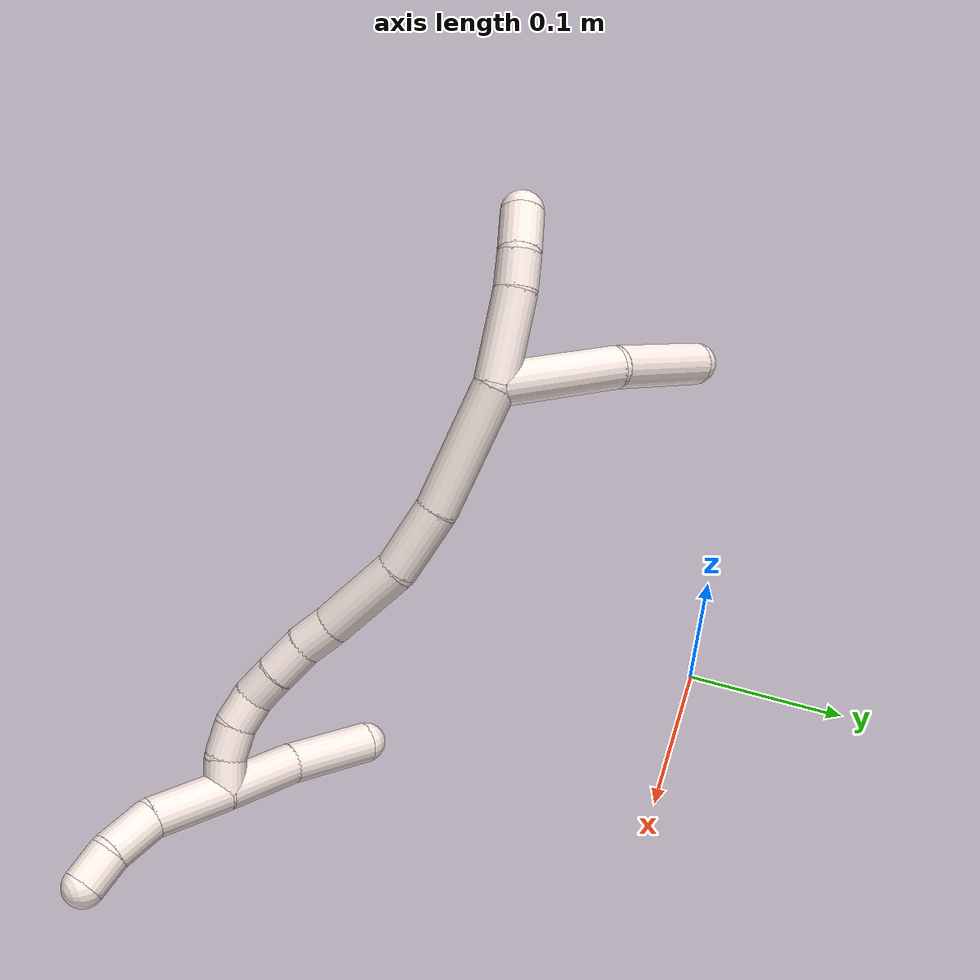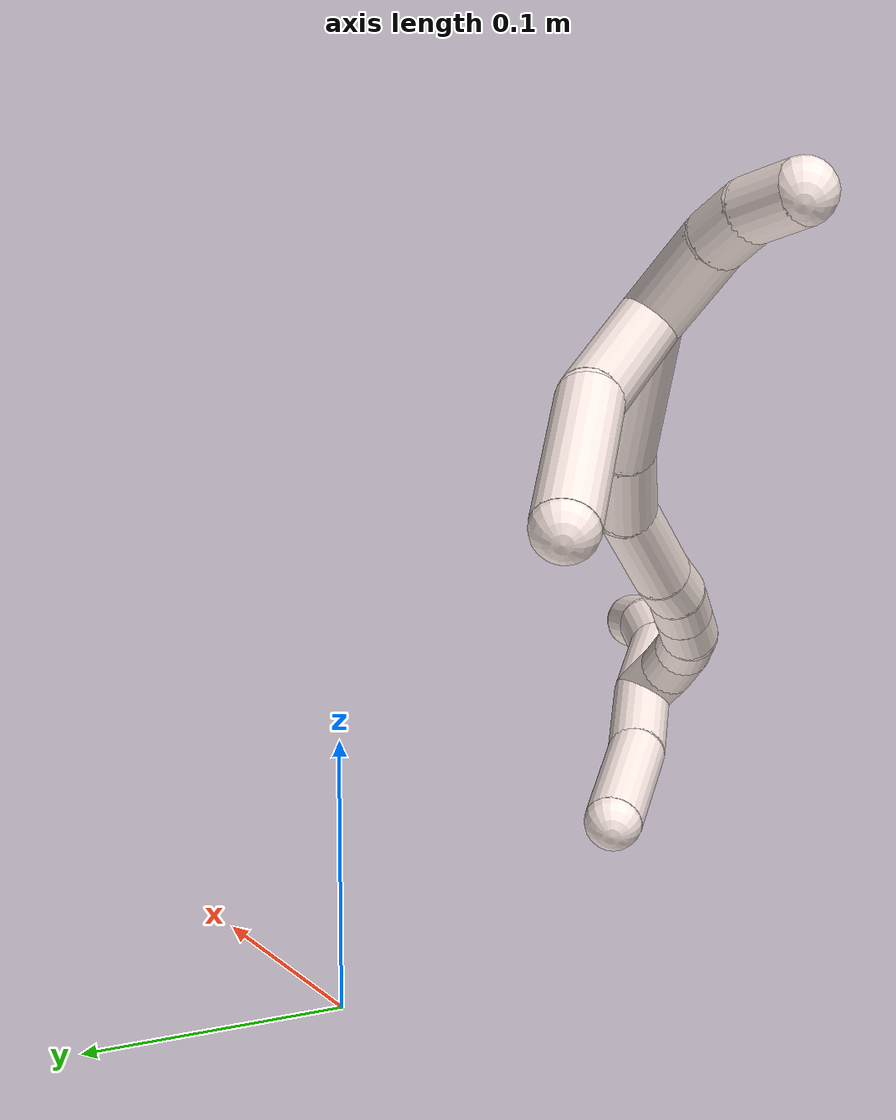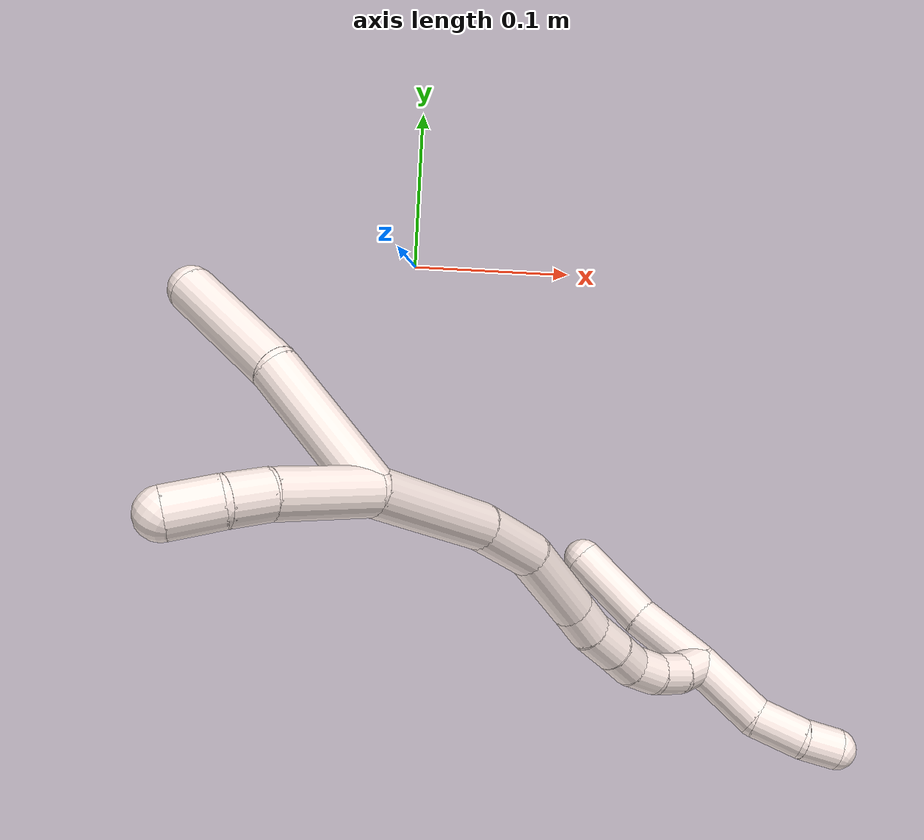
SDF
<sdf version="1.7">
 <world name="default">
  <model name="11">
   <static>0</static>
   <link name="11">
    <collision name="collision-cylinder-e_1_2_8">
     <pose>0.003264 0.008824 -0.03828 -2.91504 0.082893 -0.699125</pose>
     <geometry><cylinder><radius>0.0125</radius><length>0.078838</length></cylinder></geometry>
     <surface>
      <friction><ode><mu>1.16</mu><mu2>1.16</mu2><slip1>0</slip1><slip2>0</slip2></ode></friction>
      <contact><ode><kp>1e+06</kp><kd>1</kd><max_vel>0</max_vel><min_depth>0.001</min_depth></ode></contact>
     </surface>
    </collision>
    <visual name="visual-cylinder-e_1_2_8">
     <pose>0.003264 0.008824 -0.03828 -2.91504 0.082893 -0.699125</pose>
     <geometry><cylinder><radius>0.0125</radius><length>0.078838</length></cylinder></geometry>
     <material><ambient>1 0.933333 0.909804 1</ambient></material>
    </visual>
    <collision name="collision-cylinder-e_2_8_6">
     <pose>0.013125 0.016345 -0.111499 3.10433 0.186504 2.74829</pose>
     <geometry><cylinder><radius>0.0125</radius><length>0.071162</length></cylinder></geometry>
     <surface>
      <friction><ode><mu>1.16</mu><mu2>1.16</mu2><slip1>0</slip1><slip2>0</slip2></ode></friction>
      <contact><ode><kp>1e+06</kp><kd>1</kd><max_vel>0</max_vel><min_depth>0.001</min_depth></ode></contact>
     </surface>
    </collision>
    <visual name="visual-cylinder-e_2_8_6">
     <pose>0.013125 0.016345 -0.111499 3.10433 0.186504 2.74829</pose>
     <geometry><cylinder><radius>0.0125</radius><length>0.071162</length></cylinder></geometry>
     <material><ambient>1 0.933333 0.909804 1</ambient></material>
    </visual>
    <collision name="collision-cylinder-e_1_2_9">
     <pose>-0.023856 0.000978 -0.011448 -3.05637 -1.12196 3.00608</pose>
     <geometry><cylinder><radius>0.0125</radius><length>0.052957</length></cylinder></geometry>
     <surface>
      <friction><ode><mu>1.16</mu><mu2>1.16</mu2><slip1>0</slip1><slip2>0</slip2></ode></friction>
      <contact><ode><kp>1e+06</kp><kd>1</kd><max_vel>0</max_vel><min_depth>0.001</min_depth></ode></contact>
     </surface>
    </collision>
    <visual name="visual-cylinder-e_1_2_9">
     <pose>-0.023856 0.000978 -0.011448 -3.05637 -1.12196 3.00608</pose>
     <geometry><cylinder><radius>0.0125</radius><length>0.052957</length></cylinder></geometry>
     <material><ambient>1 0.933333 0.909804 1</ambient></material>
    </visual>
    <collision name="collision-cylinder-e_2_9_10">
     <pose>-0.057104 0.000844 -0.027215 2.8897 -1.12742 -2.74623</pose>
     <geometry><cylinder><radius>0.0125</radius><length>0.020795</length></cylinder></geometry>
     <surface>
      <friction><ode><mu>1.16</mu><mu2>1.16</mu2><slip1>0</slip1><slip2>0</slip2></ode></friction>
      <contact><ode><kp>1e+06</kp><kd>1</kd><max_vel>0</max_vel><min_depth>0.001</min_depth></ode></contact>
     </surface>
    </collision>
    <visual name="visual-cylinder-e_2_9_10">
     <pose>-0.057104 0.000844 -0.027215 2.8897 -1.12742 -2.74623</pose>
     <geometry><cylinder><radius>0.0125</radius><length>0.020795</length></cylinder></geometry>
     <material><ambient>1 0.933333 0.909804 1</ambient></material>
    </visual>
    <collision name="collision-cylinder-e_3_10_5">
     <pose>-0.07678 -0.004457 -0.03853 2.60198 -0.900445 -2.10218</pose>
     <geometry><cylinder><radius>0.0125</radius><length>0.026248</length></cylinder></geometry>
     <surface>
      <friction><ode><mu>1.16</mu><mu2>1.16</mu2><slip1>0</slip1><slip2>0</slip2></ode></friction>
      <contact><ode><kp>1e+06</kp><kd>1</kd><max_vel>0</max_vel><min_depth>0.001</min_depth></ode></contact>
     </surface>
    </collision>
    <visual name="visual-cylinder-e_3_10_5">
     <pose>-0.07678 -0.004457 -0.03853 2.60198 -0.900445 -2.10218</pose>
     <geometry><cylinder><radius>0.0125</radius><length>0.026248</length></cylinder></geometry>
     <material><ambient>1 0.933333 0.909804 1</ambient></material>
    </visual>
    <collision name="collision-cylinder-e_1_2_11">
     <pose>0.032376 -0.014061 0.016204 0.714716 0.985579 0.395756</pose>
     <geometry><cylinder><radius>0.0125</radius><length>0.077679</length></cylinder></geometry>
     <surface>
      <friction><ode><mu>1.16</mu><mu2>1.16</mu2><slip1>0</slip1><slip2>0</slip2></ode></friction>
      <contact><ode><kp>1e+06</kp><kd>1</kd><max_vel>0</max_vel><min_depth>0.001</min_depth></ode></contact>
     </surface>
    </collision>
    <visual name="visual-cylinder-e_1_2_11">
     <pose>0.032376 -0.014061 0.016204 0.714716 0.985579 0.395756</pose>
     <geometry><cylinder><radius>0.0125</radius><length>0.077679</length></cylinder></geometry>
     <material><ambient>1 0.933333 0.909804 1</ambient></material>
    </visual>
    <collision name="collision-cylinder-e_2_11_12">
     <pose>0.080567 -0.038022 0.042552 0.773224 0.840043 0.359692</pose>
     <geometry><cylinder><radius>0.0125</radius><length>0.042475</length></cylinder></geometry>
     <surface>
      <friction><ode><mu>1.16</mu><mu2>1.16</mu2><slip1>0</slip1><slip2>0</slip2></ode></friction>
      <contact><ode><kp>1e+06</kp><kd>1</kd><max_vel>0</max_vel><min_depth>0.001</min_depth></ode></contact>
     </surface>
    </collision>
    <visual name="visual-cylinder-e_2_11_12">
     <pose>0.080567 -0.038022 0.042552 0.773224 0.840043 0.359692</pose>
     <geometry><cylinder><radius>0.0125</radius><length>0.042475</length></cylinder></geometry>
     <material><ambient>1 0.933333 0.909804 1</ambient></material>
    </visual>
    <collision name="collision-cylinder-e_3_12_13">
     <pose>0.111175 -0.065125 0.066457 0.896091 0.59136 0.290753</pose>
     <geometry><cylinder><radius>0.0125</radius><length>0.05307</length></cylinder></geometry>
     <surface>
      <friction><ode><mu>1.16</mu><mu2>1.16</mu2><slip1>0</slip1><slip2>0</slip2></ode></friction>
      <contact><ode><kp>1e+06</kp><kd>1</kd><max_vel>0</max_vel><min_depth>0.001</min_depth></ode></contact>
     </surface>
    </collision>
    <visual name="visual-cylinder-e_3_12_13">
     <pose>0.111175 -0.065125 0.066457 0.896091 0.59136 0.290753</pose>
     <geometry><cylinder><radius>0.0125</radius><length>0.05307</length></cylinder></geometry>
     <material><ambient>1 0.933333 0.909804 1</ambient></material>
    </visual>
    <collision name="collision-cylinder-e_4_13_14">
     <pose>0.131373 -0.089261 0.086717 0.81774 0.517053 0.228166</pose>
     <geometry><cylinder><radius>0.0125</radius><length>0.021866</length></cylinder></geometry>
     <surface>
      <friction><ode><mu>1.16</mu><mu2>1.16</mu2><slip1>0</slip1><slip2>0</slip2></ode></friction>
      <contact><ode><kp>1e+06</kp><kd>1</kd><max_vel>0</max_vel><min_depth>0.001</min_depth></ode></contact>
     </surface>
    </collision>
    <visual name="visual-cylinder-e_4_13_14">
     <pose>0.131373 -0.089261 0.086717 0.81774 0.517053 0.228166</pose>
     <geometry><cylinder><radius>0.0125</radius><length>0.021866</length></cylinder></geometry>
     <material><ambient>1 0.933333 0.909804 1</ambient></material>
    </visual>
    <collision name="collision-cylinder-e_5_14_15">
     <pose>0.14395 -0.102341 0.100632 0.692044 0.640083 0.237855</pose>
     <geometry><cylinder><radius>0.0125</radius><length>0.024019</length></cylinder></geometry>
     <surface>
      <friction><ode><mu>1.16</mu><mu2>1.16</mu2><slip1>0</slip1><slip2>0</slip2></ode></friction>
      <contact><ode><kp>1e+06</kp><kd>1</kd><max_vel>0</max_vel><min_depth>0.001</min_depth></ode></contact>
     </surface>
    </collision>
    <visual name="visual-cylinder-e_5_14_15">
     <pose>0.14395 -0.102341 0.100632 0.692044 0.640083 0.237855</pose>
     <geometry><cylinder><radius>0.0125</radius><length>0.024019</length></cylinder></geometry>
     <material><ambient>1 0.933333 0.909804 1</ambient></material>
    </visual>
    <collision name="collision-cylinder-e_6_15_16">
     <pose>0.157501 -0.11417 0.113693 0.788798 0.672533 0.288936</pose>
     <geometry><cylinder><radius>0.0125</radius><length>0.02048</length></cylinder></geometry>
     <surface>
      <friction><ode><mu>1.16</mu><mu2>1.16</mu2><slip1>0</slip1><slip2>0</slip2></ode></friction>
      <contact><ode><kp>1e+06</kp><kd>1</kd><max_vel>0</max_vel><min_depth>0.001</min_depth></ode></contact>
     </surface>
    </collision>
    <visual name="visual-cylinder-e_6_15_16">
     <pose>0.157501 -0.11417 0.113693 0.788798 0.672533 0.288936</pose>
     <geometry><cylinder><radius>0.0125</radius><length>0.02048</length></cylinder></geometry>
     <material><ambient>1 0.933333 0.909804 1</ambient></material>
    </visual>
    <collision name="collision-cylinder-e_7_16_17">
     <pose>0.171111 -0.122629 0.125712 0.410656 0.805023 0.176876</pose>
     <geometry><cylinder><radius>0.0125</radius><length>0.020061</length></cylinder></geometry>
     <surface>
      <friction><ode><mu>1.16</mu><mu2>1.16</mu2><slip1>0</slip1><slip2>0</slip2></ode></friction>
      <contact><ode><kp>1e+06</kp><kd>1</kd><max_vel>0</max_vel><min_depth>0.001</min_depth></ode></contact>
     </surface>
    </collision>
    <visual name="visual-cylinder-e_7_16_17">
     <pose>0.171111 -0.122629 0.125712 0.410656 0.805023 0.176876</pose>
     <geometry><cylinder><radius>0.0125</radius><length>0.020061</length></cylinder></geometry>
     <material><ambient>1 0.933333 0.909804 1</ambient></material>
    </visual>
    <collision name="collision-cylinder-e_8_17_18">
     <pose>0.187161 -0.126666 0.136937 0.254487 1.05396 0.148608</pose>
     <geometry><cylinder><radius>0.0125</radius><length>0.02029</length></cylinder></geometry>
     <surface>
      <friction><ode><mu>1.16</mu><mu2>1.16</mu2><slip1>0</slip1><slip2>0</slip2></ode></friction>
      <contact><ode><kp>1e+06</kp><kd>1</kd><max_vel>0</max_vel><min_depth>0.001</min_depth></ode></contact>
     </surface>
    </collision>
    <visual name="visual-cylinder-e_8_17_18">
     <pose>0.187161 -0.126666 0.136937 0.254487 1.05396 0.148608</pose>
     <geometry><cylinder><radius>0.0125</radius><length>0.02029</length></cylinder></geometry>
     <material><ambient>1 0.933333 0.909804 1</ambient></material>
    </visual>
    <collision name="collision-cylinder-e_9_18_1">
     <pose>0.205609 -0.12742 0.144558 -0.181624 1.28632 -0.136286</pose>
     <geometry><cylinder><radius>0.0125</radius><length>0.020062</length></cylinder></geometry>
     <surface>
      <friction><ode><mu>1.16</mu><mu2>1.16</mu2><slip1>0</slip1><slip2>0</slip2></ode></friction>
      <contact><ode><kp>1e+06</kp><kd>1</kd><max_vel>0</max_vel><min_depth>0.001</min_depth></ode></contact>
     </surface>
    </collision>
    <visual name="visual-cylinder-e_9_18_1">
     <pose>0.205609 -0.12742 0.144558 -0.181624 1.28632 -0.136286</pose>
     <geometry><cylinder><radius>0.0125</radius><length>0.020062</length></cylinder></geometry>
     <material><ambient>1 0.933333 0.909804 1</ambient></material>
    </visual>
    <collision name="collision-cylinder-e_1_1_19">
     <pose>0.216319 -0.127012 0.12386 3.1373 0.046083 2.95579</pose>
     <geometry><cylinder><radius>0.0125</radius><length>0.046984</length></cylinder></geometry>
     <surface>
      <friction><ode><mu>1.16</mu><mu2>1.16</mu2><slip1>0</slip1><slip2>0</slip2></ode></friction>
      <contact><ode><kp>1e+06</kp><kd>1</kd><max_vel>0</max_vel><min_depth>0.001</min_depth></ode></contact>
     </surface>
    </collision>
    <visual name="visual-cylinder-e_1_1_19">
     <pose>0.216319 -0.127012 0.12386 3.1373 0.046083 2.95579</pose>
     <geometry><cylinder><radius>0.0125</radius><length>0.046984</length></cylinder></geometry>
     <material><ambient>1 0.933333 0.909804 1</ambient></material>
    </visual>
    <collision name="collision-cylinder-e_2_19_4">
     <pose>0.220281 -0.124258 0.074197 -3.03304 0.108854 -1.57357</pose>
     <geometry><cylinder><radius>0.0125</radius><length>0.053016</length></cylinder></geometry>
     <surface>
      <friction><ode><mu>1.16</mu><mu2>1.16</mu2><slip1>0</slip1><slip2>0</slip2></ode></friction>
      <contact><ode><kp>1e+06</kp><kd>1</kd><max_vel>0</max_vel><min_depth>0.001</min_depth></ode></contact>
     </surface>
    </collision>
    <visual name="visual-cylinder-e_2_19_4">
     <pose>0.220281 -0.124258 0.074197 -3.03304 0.108854 -1.57357</pose>
     <geometry><cylinder><radius>0.0125</radius><length>0.053016</length></cylinder></geometry>
     <material><ambient>1 0.933333 0.909804 1</ambient></material>
    </visual>
    <collision name="collision-cylinder-e_1_1_20">
     <pose>0.215013 -0.13002 0.170424 0.13378 -0.00957 -0.000641</pose>
     <geometry><cylinder><radius>0.0125</radius><length>0.046614</length></cylinder></geometry>
     <surface>
      <friction><ode><mu>1.16</mu><mu2>1.16</mu2><slip1>0</slip1><slip2>0</slip2></ode></friction>
      <contact><ode><kp>1e+06</kp><kd>1</kd><max_vel>0</max_vel><min_depth>0.001</min_depth></ode></contact>
     </surface>
    </collision>
    <visual name="visual-cylinder-e_1_1_20">
     <pose>0.215013 -0.13002 0.170424 0.13378 -0.00957 -0.000641</pose>
     <geometry><cylinder><radius>0.0125</radius><length>0.046614</length></cylinder></geometry>
     <material><ambient>1 0.933333 0.909804 1</ambient></material>
    </visual>
    <collision name="collision-cylinder-e_2_20_21">
     <pose>0.218552 -0.131847 0.208327 -0.086378 0.247909 -0.010769</pose>
     <geometry><cylinder><radius>0.0125</radius><length>0.030658</length></cylinder></geometry>
     <surface>
      <friction><ode><mu>1.16</mu><mu2>1.16</mu2><slip1>0</slip1><slip2>0</slip2></ode></friction>
      <contact><ode><kp>1e+06</kp><kd>1</kd><max_vel>0</max_vel><min_depth>0.001</min_depth></ode></contact>
     </surface>
    </collision>
    <visual name="visual-cylinder-e_2_20_21">
     <pose>0.218552 -0.131847 0.208327 -0.086378 0.247909 -0.010769</pose>
     <geometry><cylinder><radius>0.0125</radius><length>0.030658</length></cylinder></geometry>
     <material><ambient>1 0.933333 0.909804 1</ambient></material>
    </visual>
    <collision name="collision-cylinder-e_3_21_3">
     <pose>0.22814 -0.130234 0.232882 -0.033836 0.538432 -0.009337</pose>
     <geometry><cylinder><radius>0.0125</radius><length>0.022728</length></cylinder></geometry>
     <surface>
      <friction><ode><mu>1.16</mu><mu2>1.16</mu2><slip1>0</slip1><slip2>0</slip2></ode></friction>
      <contact><ode><kp>1e+06</kp><kd>1</kd><max_vel>0</max_vel><min_depth>0.001</min_depth></ode></contact>
     </surface>
    </collision>
    <visual name="visual-cylinder-e_3_21_3">
     <pose>0.22814 -0.130234 0.232882 -0.033836 0.538432 -0.009337</pose>
     <geometry><cylinder><radius>0.0125</radius><length>0.022728</length></cylinder></geometry>
     <material><ambient>1 0.933333 0.909804 1</ambient></material>
    </visual>
    <collision name="collision-sphere-3">
     <pose>0.233968 -0.129904 0.242633 0 -0 0</pose>
     <geometry><sphere><radius>0.0125</radius></sphere></geometry>
     <surface>
      <friction><ode><mu>1.16</mu><mu2>1.16</mu2><slip1>0</slip1><slip2>0</slip2></ode></friction>
      <contact><ode><kp>1e+06</kp><kd>1</kd><max_vel>0</max_vel><min_depth>0.001</min_depth></ode></contact>
     </surface>
    </collision>
    <visual name="visual-sphere-3">
     <pose>0.233968 -0.129904 0.242633 0 -0 0</pose>
     <geometry><sphere><radius>0.0125</radius></sphere></geometry>
     <material><ambient>1 0.933333 0.909804 1</ambient></material>
    </visual>
    <collision name="collision-sphere-21">
     <pose>0.222313 -0.130565 0.223132 0 -0 0</pose>
     <geometry><sphere><radius>0.0125</radius></sphere></geometry>
     <surface>
      <friction><ode><mu>1.16</mu><mu2>1.16</mu2><slip1>0</slip1><slip2>0</slip2></ode></friction>
      <contact><ode><kp>1e+06</kp><kd>1</kd><max_vel>0</max_vel><min_depth>0.001</min_depth></ode></contact>
     </surface>
    </collision>
    <visual name="visual-sphere-21">
     <pose>0.222313 -0.130565 0.223132 0 -0 0</pose>
     <geometry><sphere><radius>0.0125</radius></sphere></geometry>
     <material><ambient>1 0.933333 0.909804 1</ambient></material>
    </visual>
    <collision name="collision-sphere-20">
     <pose>0.21479 -0.133129 0.193522 0 -0 0</pose>
     <geometry><sphere><radius>0.0125</radius></sphere></geometry>
     <surface>
      <friction><ode><mu>1.16</mu><mu2>1.16</mu2><slip1>0</slip1><slip2>0</slip2></ode></friction>
      <contact><ode><kp>1e+06</kp><kd>1</kd><max_vel>0</max_vel><min_depth>0.001</min_depth></ode></contact>
     </surface>
    </collision>
    <visual name="visual-sphere-20">
     <pose>0.21479 -0.133129 0.193522 0 -0 0</pose>
     <geometry><sphere><radius>0.0125</radius></sphere></geometry>
     <material><ambient>1 0.933333 0.909804 1</ambient></material>
    </visual>
    <collision name="collision-sphere-4">
     <pose>0.223161 -0.121403 0.048001 0 -0 0</pose>
     <geometry><sphere><radius>0.0125</radius></sphere></geometry>
     <surface>
      <friction><ode><mu>1.16</mu><mu2>1.16</mu2><slip1>0</slip1><slip2>0</slip2></ode></friction>
      <contact><ode><kp>1e+06</kp><kd>1</kd><max_vel>0</max_vel><min_depth>0.001</min_depth></ode></contact>
     </surface>
    </collision>
    <visual name="visual-sphere-4">
     <pose>0.223161 -0.121403 0.048001 0 -0 0</pose>
     <geometry><sphere><radius>0.0125</radius></sphere></geometry>
     <material><ambient>1 0.933333 0.909804 1</ambient></material>
    </visual>
    <collision name="collision-sphere-5">
     <pose>-0.087064 -0.008646 -0.045525 0 -0 0</pose>
     <geometry><sphere><radius>0.0125</radius></sphere></geometry>
     <surface>
      <friction><ode><mu>1.16</mu><mu2>1.16</mu2><slip1>0</slip1><slip2>0</slip2></ode></friction>
      <contact><ode><kp>1e+06</kp><kd>1</kd><max_vel>0</max_vel><min_depth>0.001</min_depth></ode></contact>
     </surface>
    </collision>
    <visual name="visual-sphere-5">
     <pose>-0.087064 -0.008646 -0.045525 0 -0 0</pose>
     <geometry><sphere><radius>0.0125</radius></sphere></geometry>
     <material><ambient>1 0.933333 0.909804 1</ambient></material>
    </visual>
    <collision name="collision-sphere-10">
     <pose>-0.066496 -0.000267 -0.031535 0 -0 0</pose>
     <geometry><sphere><radius>0.0125</radius></sphere></geometry>
     <surface>
      <friction><ode><mu>1.16</mu><mu2>1.16</mu2><slip1>0</slip1><slip2>0</slip2></ode></friction>
      <contact><ode><kp>1e+06</kp><kd>1</kd><max_vel>0</max_vel><min_depth>0.001</min_depth></ode></contact>
     </surface>
    </collision>
    <visual name="visual-sphere-10">
     <pose>-0.066496 -0.000267 -0.031535 0 -0 0</pose>
     <geometry><sphere><radius>0.0125</radius></sphere></geometry>
     <material><ambient>1 0.933333 0.909804 1</ambient></material>
    </visual>
    <collision name="collision-sphere-6">
     <pose>0.019723 0.015043 -0.146439 0 -0 0</pose>
     <geometry><sphere><radius>0.0125</radius></sphere></geometry>
     <surface>
      <friction><ode><mu>1.16</mu><mu2>1.16</mu2><slip1>0</slip1><slip2>0</slip2></ode></friction>
      <contact><ode><kp>1e+06</kp><kd>1</kd><max_vel>0</max_vel><min_depth>0.001</min_depth></ode></contact>
     </surface>
    </collision>
    <visual name="visual-sphere-6">
     <pose>0.019723 0.015043 -0.146439 0 -0 0</pose>
     <geometry><sphere><radius>0.0125</radius></sphere></geometry>
     <material><ambient>1 0.933333 0.909804 1</ambient></material>
    </visual>
    <collision name="collision-sphere-9">
     <pose>-0.047712 0.001956 -0.022896 0 -0 0</pose>
     <geometry><sphere><radius>0.0125</radius></sphere></geometry>
     <surface>
      <friction><ode><mu>1.16</mu><mu2>1.16</mu2><slip1>0</slip1><slip2>0</slip2></ode></friction>
      <contact><ode><kp>1e+06</kp><kd>1</kd><max_vel>0</max_vel><min_depth>0.001</min_depth></ode></contact>
     </surface>
    </collision>
    <visual name="visual-sphere-9">
     <pose>-0.047712 0.001956 -0.022896 0 -0 0</pose>
     <geometry><sphere><radius>0.0125</radius></sphere></geometry>
     <material><ambient>1 0.933333 0.909804 1</ambient></material>
    </visual>
    <collision name="collision-sphere-2">
     <geometry><sphere><radius>0.0125</radius></sphere></geometry>
     <surface>
      <friction><ode><mu>1.16</mu><mu2>1.16</mu2><slip1>0</slip1><slip2>0</slip2></ode></friction>
      <contact><ode><kp>1e+06</kp><kd>1</kd><max_vel>0</max_vel><min_depth>0.001</min_depth></ode></contact>
     </surface>
    </collision>
    <visual name="visual-sphere-2">
     <geometry><sphere><radius>0.0125</radius></sphere></geometry>
     <material><ambient>1 0.933333 0.909804 1</ambient></material>
    </visual>
    <collision name="collision-sphere-19">
     <pose>0.217401 -0.127113 0.100393 0 -0 0</pose>
     <geometry><sphere><radius>0.0125</radius></sphere></geometry>
     <surface>
      <friction><ode><mu>1.16</mu><mu2>1.16</mu2><slip1>0</slip1><slip2>0</slip2></ode></friction>
      <contact><ode><kp>1e+06</kp><kd>1</kd><max_vel>0</max_vel><min_depth>0.001</min_depth></ode></contact>
     </surface>
    </collision>
    <visual name="visual-sphere-19">
     <pose>0.217401 -0.127113 0.100393 0 -0 0</pose>
     <geometry><sphere><radius>0.0125</radius></sphere></geometry>
     <material><ambient>1 0.933333 0.909804 1</ambient></material>
    </visual>
    <collision name="collision-sphere-8">
     <pose>0.006528 0.017648 -0.076559 0 -0 0</pose>
     <geometry><sphere><radius>0.0125</radius></sphere></geometry>
     <surface>
      <friction><ode><mu>1.16</mu><mu2>1.16</mu2><slip1>0</slip1><slip2>0</slip2></ode></friction>
      <contact><ode><kp>1e+06</kp><kd>1</kd><max_vel>0</max_vel><min_depth>0.001</min_depth></ode></contact>
     </surface>
    </collision>
    <visual name="visual-sphere-8">
     <pose>0.006528 0.017648 -0.076559 0 -0 0</pose>
     <geometry><sphere><radius>0.0125</radius></sphere></geometry>
     <material><ambient>1 0.933333 0.909804 1</ambient></material>
    </visual>
    <collision name="collision-sphere-11">
     <pose>0.064752 -0.028122 0.032408 0 -0 0</pose>
     <geometry><sphere><radius>0.0125</radius></sphere></geometry>
     <surface>
      <friction><ode><mu>1.16</mu><mu2>1.16</mu2><slip1>0</slip1><slip2>0</slip2></ode></friction>
      <contact><ode><kp>1e+06</kp><kd>1</kd><max_vel>0</max_vel><min_depth>0.001</min_depth></ode></contact>
     </surface>
    </collision>
    <visual name="visual-sphere-11">
     <pose>0.064752 -0.028122 0.032408 0 -0 0</pose>
     <geometry><sphere><radius>0.0125</radius></sphere></geometry>
     <material><ambient>1 0.933333 0.909804 1</ambient></material>
    </visual>
    <collision name="collision-sphere-12">
     <pose>0.096382 -0.047922 0.052696 0 -0 0</pose>
     <geometry><sphere><radius>0.0125</radius></sphere></geometry>
     <surface>
      <friction><ode><mu>1.16</mu><mu2>1.16</mu2><slip1>0</slip1><slip2>0</slip2></ode></friction>
      <contact><ode><kp>1e+06</kp><kd>1</kd><max_vel>0</max_vel><min_depth>0.001</min_depth></ode></contact>
     </surface>
    </collision>
    <visual name="visual-sphere-12">
     <pose>0.096382 -0.047922 0.052696 0 -0 0</pose>
     <geometry><sphere><radius>0.0125</radius></sphere></geometry>
     <material><ambient>1 0.933333 0.909804 1</ambient></material>
    </visual>
    <collision name="collision-sphere-13">
     <pose>0.125968 -0.082327 0.080217 0 -0 0</pose>
     <geometry><sphere><radius>0.0125</radius></sphere></geometry>
     <surface>
      <friction><ode><mu>1.16</mu><mu2>1.16</mu2><slip1>0</slip1><slip2>0</slip2></ode></friction>
      <contact><ode><kp>1e+06</kp><kd>1</kd><max_vel>0</max_vel><min_depth>0.001</min_depth></ode></contact>
     </surface>
    </collision>
    <visual name="visual-sphere-13">
     <pose>0.125968 -0.082327 0.080217 0 -0 0</pose>
     <geometry><sphere><radius>0.0125</radius></sphere></geometry>
     <material><ambient>1 0.933333 0.909804 1</ambient></material>
    </visual>
    <collision name="collision-sphere-14">
     <pose>0.136777 -0.096195 0.093216 0 -0 0</pose>
     <geometry><sphere><radius>0.0125</radius></sphere></geometry>
     <surface>
      <friction><ode><mu>1.16</mu><mu2>1.16</mu2><slip1>0</slip1><slip2>0</slip2></ode></friction>
      <contact><ode><kp>1e+06</kp><kd>1</kd><max_vel>0</max_vel><min_depth>0.001</min_depth></ode></contact>
     </surface>
    </collision>
    <visual name="visual-sphere-14">
     <pose>0.136777 -0.096195 0.093216 0 -0 0</pose>
     <geometry><sphere><radius>0.0125</radius></sphere></geometry>
     <material><ambient>1 0.933333 0.909804 1</ambient></material>
    </visual>
    <collision name="collision-sphere-15">
     <pose>0.151122 -0.108487 0.108048 0 -0 0</pose>
     <geometry><sphere><radius>0.0125</radius></sphere></geometry>
     <surface>
      <friction><ode><mu>1.16</mu><mu2>1.16</mu2><slip1>0</slip1><slip2>0</slip2></ode></friction>
      <contact><ode><kp>1e+06</kp><kd>1</kd><max_vel>0</max_vel><min_depth>0.001</min_depth></ode></contact>
     </surface>
    </collision>
    <visual name="visual-sphere-15">
     <pose>0.151122 -0.108487 0.108048 0 -0 0</pose>
     <geometry><sphere><radius>0.0125</radius></sphere></geometry>
     <material><ambient>1 0.933333 0.909804 1</ambient></material>
    </visual>
    <collision name="collision-sphere-16">
     <pose>0.163881 -0.119854 0.119338 0 -0 0</pose>
     <geometry><sphere><radius>0.0125</radius></sphere></geometry>
     <surface>
      <friction><ode><mu>1.16</mu><mu2>1.16</mu2><slip1>0</slip1><slip2>0</slip2></ode></friction>
      <contact><ode><kp>1e+06</kp><kd>1</kd><max_vel>0</max_vel><min_depth>0.001</min_depth></ode></contact>
     </surface>
    </collision>
    <visual name="visual-sphere-16">
     <pose>0.163881 -0.119854 0.119338 0 -0 0</pose>
     <geometry><sphere><radius>0.0125</radius></sphere></geometry>
     <material><ambient>1 0.933333 0.909804 1</ambient></material>
    </visual>
    <collision name="collision-sphere-17">
     <pose>0.178341 -0.125404 0.132086 0 -0 0</pose>
     <geometry><sphere><radius>0.0125</radius></sphere></geometry>
     <surface>
      <friction><ode><mu>1.16</mu><mu2>1.16</mu2><slip1>0</slip1><slip2>0</slip2></ode></friction>
      <contact><ode><kp>1e+06</kp><kd>1</kd><max_vel>0</max_vel><min_depth>0.001</min_depth></ode></contact>
     </surface>
    </collision>
    <visual name="visual-sphere-17">
     <pose>0.178341 -0.125404 0.132086 0 -0 0</pose>
     <geometry><sphere><radius>0.0125</radius></sphere></geometry>
     <material><ambient>1 0.933333 0.909804 1</ambient></material>
    </visual>
    <collision name="collision-sphere-18">
     <pose>0.195981 -0.127928 0.141789 0 -0 0</pose>
     <geometry><sphere><radius>0.0125</radius></sphere></geometry>
     <surface>
      <friction><ode><mu>1.16</mu><mu2>1.16</mu2><slip1>0</slip1><slip2>0</slip2></ode></friction>
      <contact><ode><kp>1e+06</kp><kd>1</kd><max_vel>0</max_vel><min_depth>0.001</min_depth></ode></contact>
     </surface>
    </collision>
    <visual name="visual-sphere-18">
     <pose>0.195981 -0.127928 0.141789 0 -0 0</pose>
     <geometry><sphere><radius>0.0125</radius></sphere></geometry>
     <material><ambient>1 0.933333 0.909804 1</ambient></material>
    </visual>
    <collision name="collision-sphere-1">
     <pose>0.215236 -0.126911 0.147326 0 -0 0</pose>
     <geometry><sphere><radius>0.0125</radius></sphere></geometry>
     <surface>
      <friction><ode><mu>1.16</mu><mu2>1.16</mu2><slip1>0</slip1><slip2>0</slip2></ode></friction>
      <contact><ode><kp>1e+06</kp><kd>1</kd><max_vel>0</max_vel><min_depth>0.001</min_depth></ode></contact>
     </surface>
    </collision>
    <visual name="visual-sphere-1">
     <pose>0.215236 -0.126911 0.147326 0 -0 0</pose>
     <geometry><sphere><radius>0.0125</radius></sphere></geometry>
     <material><ambient>1 0.933333 0.909804 1</ambient></material>
    </visual>
    <inertial>
     <pose>0.097631 -0.059073 0.050235 0 -0 0</pose>
     <mass>0.75</mass>
     <inertia><ixx>4.6e-05</ixx><ixy>0</ixy><ixz>0</ixz><iyy>8.4e-05</iyy><iyz>0</iyz><izz>-3.4e-05</izz></inertia>
    </inertial>
   </link>
   <pose>0.011849 -0.132681 0.240943 1.05464 0.948656 0.570422</pose>
  </model>
 </world>
</sdf>
